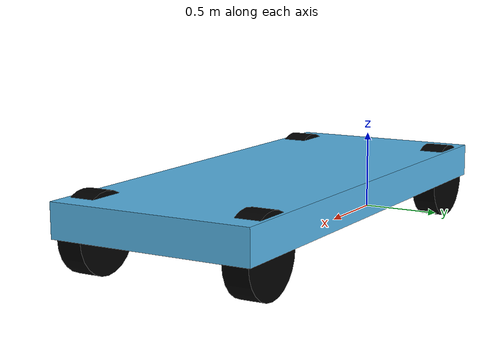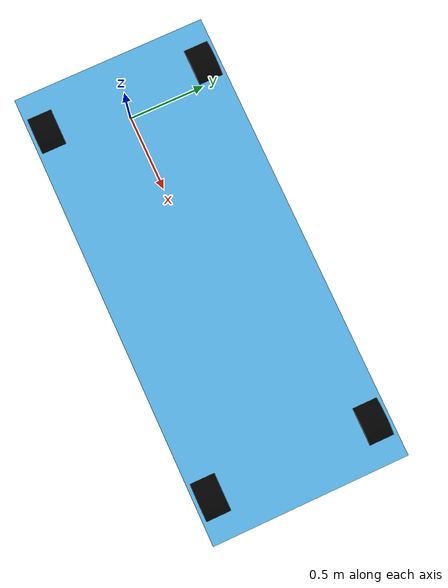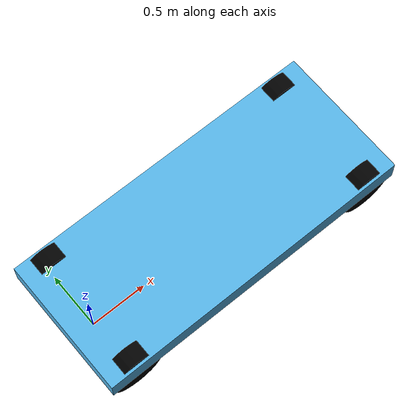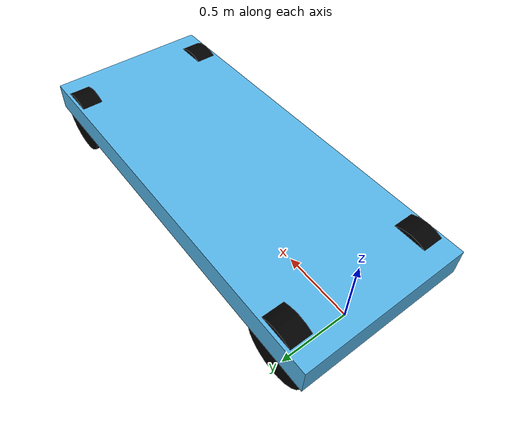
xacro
<?xml version="1.0"?>
<robot name="golf_cart" xmlns:xacro="http://www.ros.org/wiki/xacro">

  <xacro:property name="wheel_radius"  value="0.23"/>
  <xacro:property name="wheel_width"   value="0.15"/>
  <xacro:property name="wheelbase"     value="2.30"/>
  <xacro:property name="track_width"   value="1.005"/> <xacro:property name="steer_spacing" value="0.690"/> <xacro:property name="chassis_length" value="2.8"/>
  <xacro:property name="chassis_width"  value="1.2"/>
  <xacro:property name="chassis_height" value="0.2"/>
  <xacro:property name="chassis_mass"   value="300"/>

  <xacro:include filename="$(find realsense2_description)/urdf/_d455.urdf.xacro"/>
 <material name="black"><color rgba="0 0 0 1"/></material>
  <link name="base_footprint"/>

  <joint name="base_footprint_joint" type="fixed">
    <parent link="base_footprint"/>
    <child link="base_link"/>
    <origin xyz="0 0 ${wheel_radius}" rpy="0 0 0"/>
  </joint>

  <link name="base_link">
    <visual>
      <origin xyz="${wheelbase/2} 0 ${chassis_height/2}"/>
      <geometry>
        <box size="${chassis_length} ${chassis_width} ${chassis_height}"/>
      </geometry>
    </visual>
    <collision>
      <origin xyz="${wheelbase/2} 0 ${chassis_height/2}"/>
      <geometry>
        <box size="${chassis_length} ${chassis_width} ${chassis_height}"/>
      </geometry>
    </collision>
    <inertial>
      <origin xyz="${wheelbase/2} 0 ${chassis_height/2}"/>
      <mass value="${chassis_mass}"/>
      <inertia ixx="80" ixy="0" ixz="0" iyy="160" iyz="0" izz="200"/>
    </inertial>
  </link>

  <link name = "camera_mount_link"/>
  <joint name="camera_mount_joint" type="fixed" >
    <parent link="base_link" />
    <child link="camera_mount_link" />
    <origin xyz="2.4 0.0 1.22" rpy="0 0 0" />
  </joint>

  <xacro:macro name="wheel" params="name x y">
    <link name="${name}_link">
      <visual>
        <origin rpy="1.5708 0 0"/>
        <geometry>
          <cylinder radius="${wheel_radius}" length="${wheel_width}"/>
        </geometry>
        <material name="black"/>
      </visual>
      <collision>
        <origin rpy="1.5708 0 0"/>
        <geometry>
          <cylinder radius="${wheel_radius}" length="${wheel_width}"/>
        </geometry>
      </collision>
      <inertial>
        <mass value="20"/>
        <inertia ixx="1" iyy="1" izz="1" ixy="0" ixz="0" iyz="0"/>
      </inertial>
    </link>

    <joint name="${name}_joint" type="continuous">
      <parent link="base_link"/>
      <child link="${name}_link"/>
      <origin xyz="${x} ${y} 0"/>
      <axis xyz="0 1 0"/>
    </joint>
  </xacro:macro>

  <xacro:macro name="steered_wheel" params="steer_name wheel_name x steer_y wheel_y">
    <link name="${steer_name}_link">
      <inertial>
        <mass value="5"/>
        <inertia ixx="0.1" iyy="0.1" izz="0.1" ixy="0" ixz="0" iyz="0"/>
      </inertial>
    </link>

    <joint name="${steer_name}_joint" type="revolute">
      <parent link="base_link"/>
      <child link="${steer_name}_link"/>
      <origin xyz="${x} ${steer_y} 0"/>
      <axis xyz="0 0 1"/>
      <limit lower="-0.523599" upper="0.523599" effort="100" velocity="1.5"/>
    </joint>

    <link name="${wheel_name}_link">
      <visual>
        <origin rpy="1.5708 0 0"/>
        <geometry>
          <cylinder radius="${wheel_radius}" length="${wheel_width}"/>
        </geometry>
        <material name="black"/>
      </visual>
      <collision>
        <origin rpy="1.5708 0 0"/>
        <geometry>
          <cylinder radius="${wheel_radius}" length="${wheel_width}"/>
        </geometry>
      </collision>
      <inertial>
        <mass value="20"/>
        <inertia ixx="1" iyy="1" izz="1" ixy="0" ixz="0" iyz="0"/>
      </inertial>
    </link>

    <joint name="${wheel_name}_joint" type="continuous">
      <parent link="${steer_name}_link"/>
      <child link="${wheel_name}_link"/>
      <origin xyz="0 ${wheel_y - steer_y} 0"/>
      <axis xyz="0 1 0"/>
    </joint>
  </xacro:macro>

  <xacro:wheel name="rear_left_wheel"  x="0" y="${track_width/2}"/>
  <xacro:wheel name="rear_right_wheel" x="0" y="-${track_width/2}"/>

  <xacro:steered_wheel
    steer_name="front_left_steering"
    wheel_name="front_left_wheel"
    x="${wheelbase}"
    steer_y="${steer_spacing/2}"
    wheel_y="${track_width/2}"/>

  <xacro:steered_wheel
    steer_name="front_right_steering"
    wheel_name="front_right_wheel"
    x="${wheelbase}"
    steer_y="-${steer_spacing/2}"
    wheel_y="-${track_width/2}"/>

  <ros2_control name="ESP32AckermannSystem" type="system">
    <hardware>
      <plugin>esp32_hardware/ESP32Hardware</plugin>
    </hardware>

    <joint name="rear_left_wheel_joint">
      <command_interface name="velocity"/>
      <state_interface name="position"/>
      <state_interface name="velocity"/>
    </joint>
    <joint name="rear_right_wheel_joint">
      <command_interface name="velocity"/>
      <state_interface name="position"/>
      <state_interface name="velocity"/>
    </joint>

    <joint name="front_left_steering_joint">
      <command_interface name="position">
          <param name="min">-0.523599</param>
          <param name="max">0.523599</param>
      </command_interface>
      <state_interface name="position"/>
    </joint>
    <joint name="front_right_steering_joint">
      <command_interface name="position">
          <param name="min">-0.523599</param>
          <param name="max">0.523599</param>
      </command_interface>
      <state_interface name="position"/>
    </joint>

    <joint name="front_left_wheel_joint">
      <state_interface name="position"/>
    </joint>
    <joint name="front_right_wheel_joint">
      <state_interface name="position"/>
    </joint>
  </ros2_control>

</robot>
